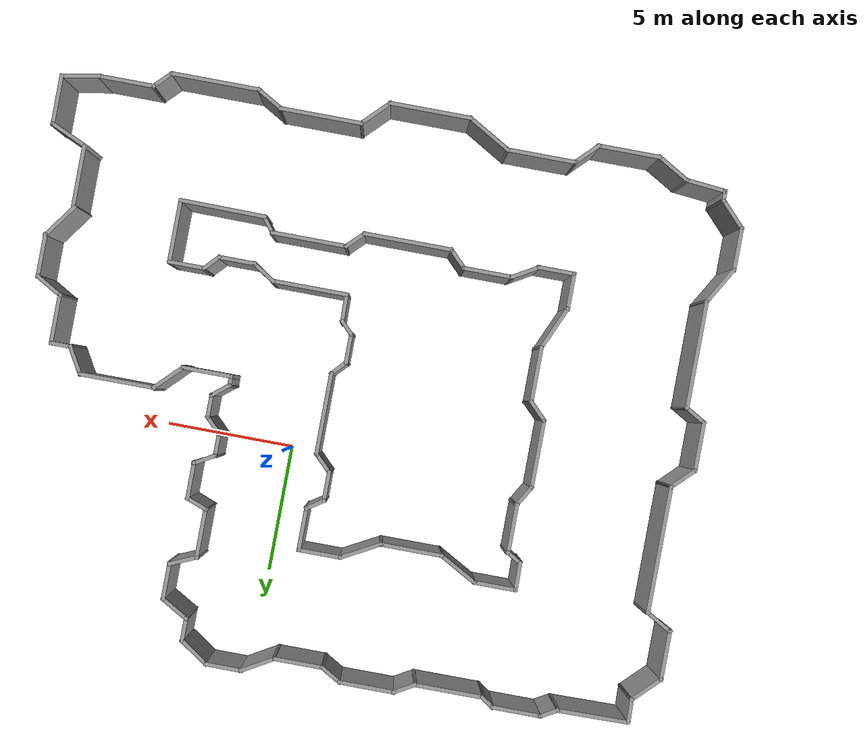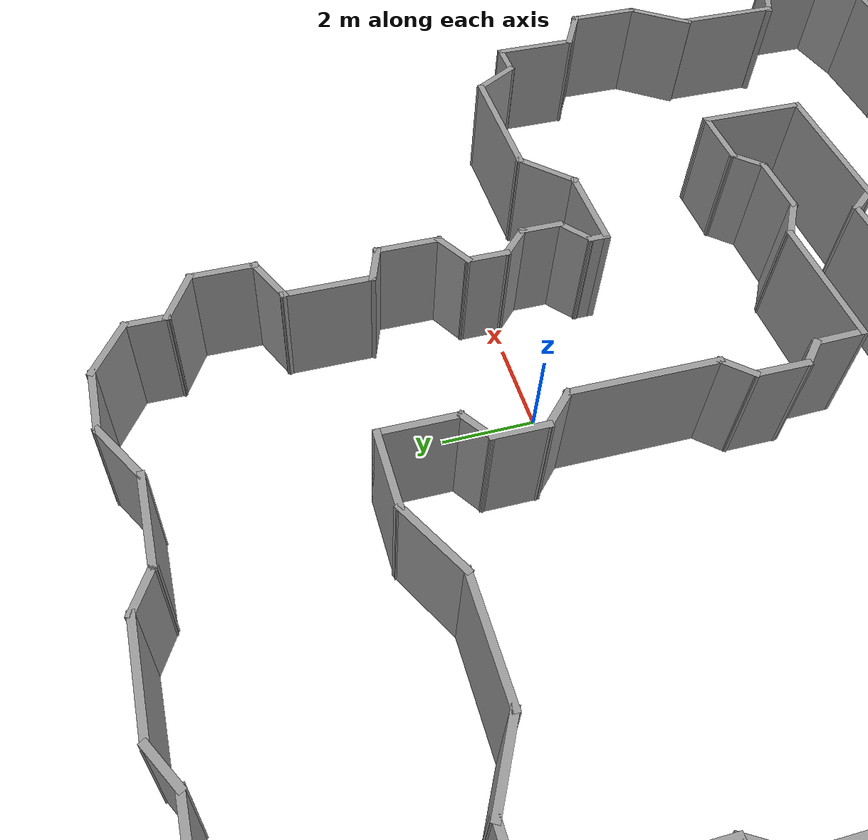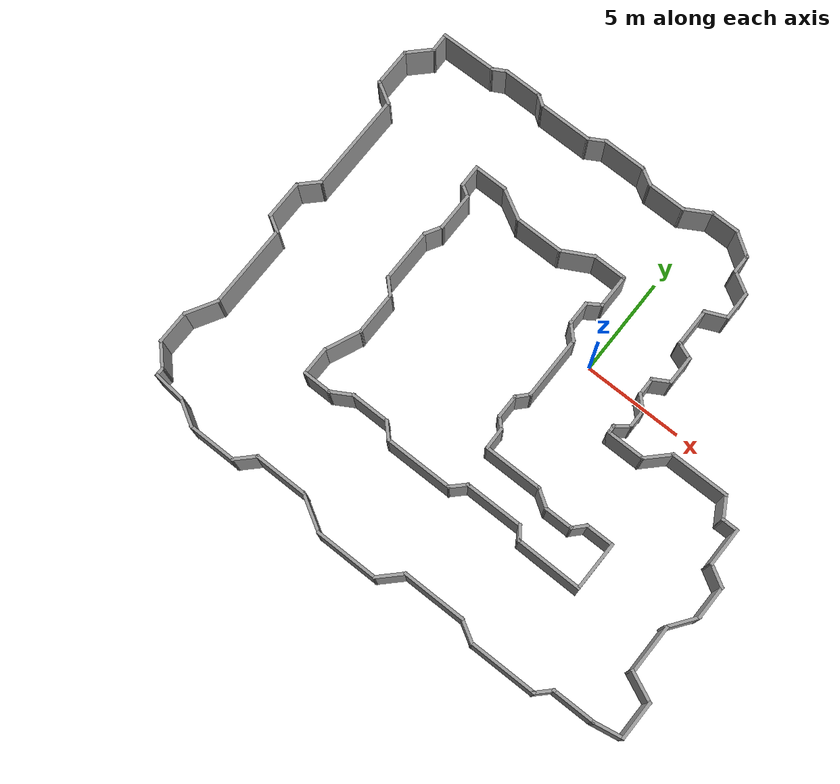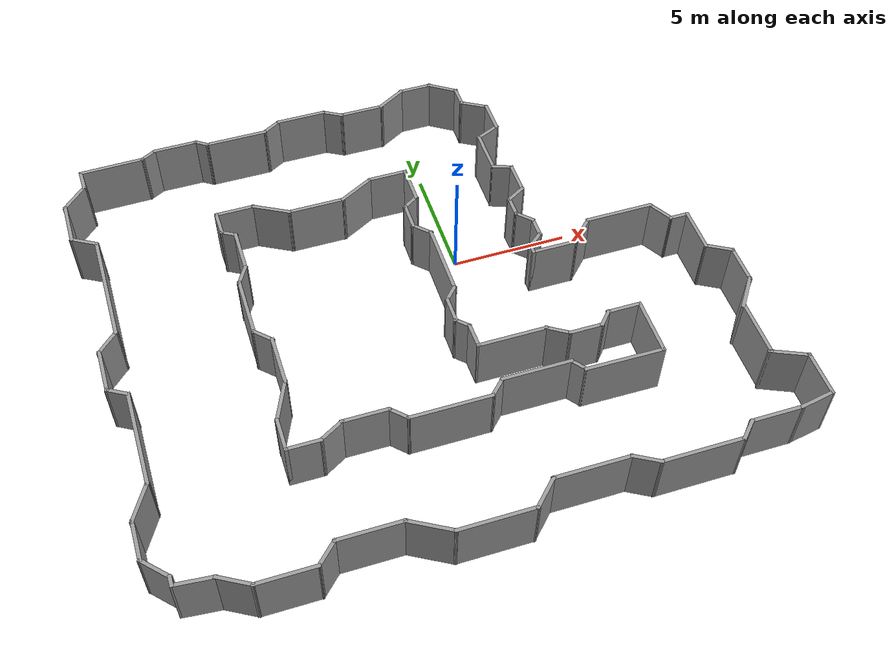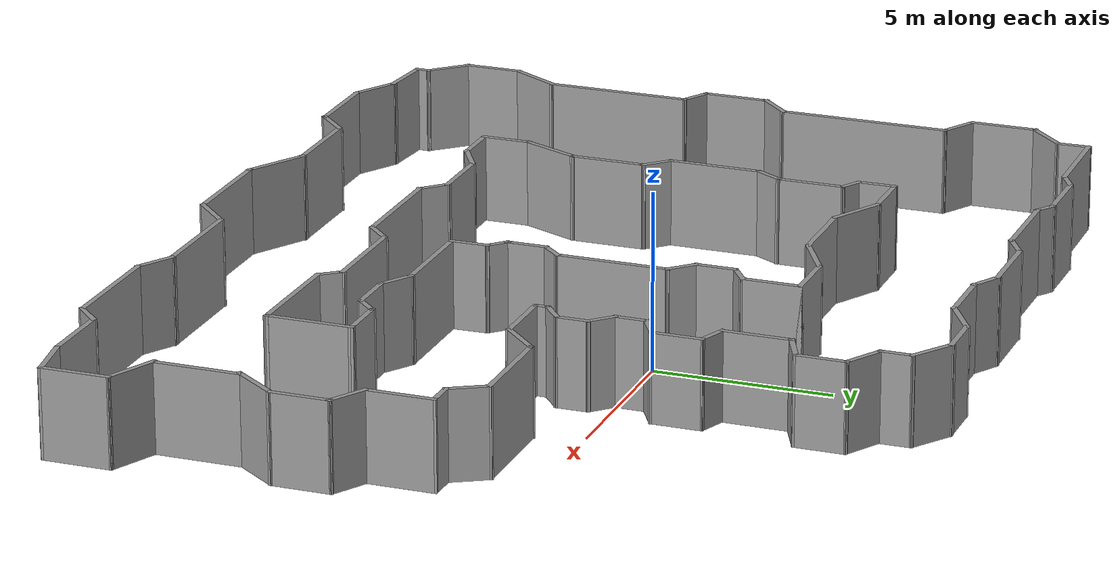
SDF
<sdf version="1.6">
 <model name="custom_hallway">
  <pose>-2.26322 -2.49916 0 0 -0 0</pose>
  <link name="Wall_100">
   <collision name="Wall_100_Collision">
    <geometry><box><size>1 0.15 2.5</size></box></geometry>
    <pose>0 0 1.25 0 -0 0</pose>
   </collision>
   <visual name="Wall_100_Visual">
    <pose>0 0 1.25 0 -0 0</pose>
    <geometry><box><size>1 0.15 2.5</size></box></geometry>
    <material>
     <script><uri>file://media/materials/scripts/gazebo.material</uri><name>Gazebo/Grey</name></script>
     <ambient>1 1 1 1</ambient>
    </material>
   </visual>
   <pose>-6.80933 -0.6273 0 0 0 -0.785398</pose>
  </link>
  <link name="Wall_101">
   <collision name="Wall_101_Collision">
    <geometry><box><size>2.25 0.15 2.5</size></box></geometry>
    <pose>0 0 1.25 0 -0 0</pose>
   </collision>
   <visual name="Wall_101_Visual">
    <pose>0 0 1.25 0 -0 0</pose>
    <geometry><box><size>2.25 0.15 2.5</size></box></geometry>
    <material>
     <script><uri>file://media/materials/scripts/gazebo.material</uri><name>Gazebo/Grey</name></script>
     <ambient>1 1 1 1</ambient>
    </material>
   </visual>
   <pose>-6.50882 -1.97782 0 0 0 -1.5708</pose>
  </link>
  <link name="Wall_102">
   <collision name="Wall_102_Collision">
    <geometry><box><size>1.92514 0.15 2.5</size></box></geometry>
    <pose>0 0 1.25 0 -0 0</pose>
   </collision>
   <visual name="Wall_102_Visual">
    <pose>0 0 1.25 0 -0 0</pose>
    <geometry><box><size>1.92514 0.15 2.5</size></box></geometry>
    <material>
     <script><uri>file://media/materials/scripts/gazebo.material</uri><name>Gazebo/Grey</name></script>
     <ambient>1 1 1 1</ambient>
    </material>
   </visual>
   <pose>-6.86481 -3.84087 0 0 0 -1.98351</pose>
  </link>
  <link name="Wall_103">
   <collision name="Wall_103_Collision">
    <geometry><box><size>1.5 0.15 2.5</size></box></geometry>
    <pose>0 0 1.25 0 -0 0</pose>
   </collision>
   <visual name="Wall_103_Visual">
    <pose>0 0 1.25 0 -0 0</pose>
    <geometry><box><size>1.5 0.15 2.5</size></box></geometry>
    <material>
     <script><uri>file://media/materials/scripts/gazebo.material</uri><name>Gazebo/Grey</name></script>
     <ambient>1 1 1 1</ambient>
    </material>
   </visual>
   <pose>-7.22081 -5.32891 0 0 0 -1.5708</pose>
  </link>
  <link name="Wall_105">
   <collision name="Wall_105_Collision">
    <geometry><box><size>1.02334 0.15 2.5</size></box></geometry>
    <pose>0 0 1.25 0 -0 0</pose>
   </collision>
   <visual name="Wall_105_Visual">
    <pose>0 0 1.25 0 -0 0</pose>
    <geometry><box><size>1.02334 0.15 2.5</size></box></geometry>
    <material>
     <script><uri>file://media/materials/scripts/gazebo.material</uri><name>Gazebo/Grey</name></script>
     <ambient>1 1 1 1</ambient>
    </material>
   </visual>
   <pose>-12.3267 9.91914 0 0 0 -1.54263</pose>
  </link>
  <link name="Wall_107">
   <collision name="Wall_107_Collision">
    <geometry><box><size>0.5 0.15 2.5</size></box></geometry>
    <pose>0 0 1.25 0 -0 0</pose>
   </collision>
   <visual name="Wall_107_Visual">
    <pose>0 0 1.25 0 -0 0</pose>
    <geometry><box><size>0.5 0.15 2.5</size></box></geometry>
    <material>
     <script><uri>file://media/materials/scripts/gazebo.material</uri><name>Gazebo/Grey</name></script>
     <ambient>1 1 1 1</ambient>
    </material>
   </visual>
   <pose>-12.2855 -9.9614 0 0 -0 1.5708</pose>
  </link>
  <link name="Wall_109">
   <collision name="Wall_109_Collision">
    <geometry><box><size>1.18687 0.15 2.5</size></box></geometry>
    <pose>0 0 1.25 0 -0 0</pose>
   </collision>
   <visual name="Wall_109_Visual">
    <pose>0 0 1.25 0 -0 0</pose>
    <geometry><box><size>1.18687 0.15 2.5</size></box></geometry>
    <material>
     <script><uri>file://media/materials/scripts/gazebo.material</uri><name>Gazebo/Grey</name></script>
     <ambient>1 1 1 1</ambient>
    </material>
   </visual>
   <pose>-7.21264 5.67772 0 0 0 -1.55503</pose>
  </link>
  <link name="Wall_111">
   <collision name="Wall_111_Collision">
    <geometry><box><size>1.5 0.15 2.5</size></box></geometry>
    <pose>0 0 1.25 0 -0 0</pose>
   </collision>
   <visual name="Wall_111_Visual">
    <pose>0 0 1.25 0 -0 0</pose>
    <geometry><box><size>1.5 0.15 2.5</size></box></geometry>
    <material>
     <script><uri>file://media/materials/scripts/gazebo.material</uri><name>Gazebo/Grey</name></script>
     <ambient>1 1 1 1</ambient>
    </material>
   </visual>
   <pose>-6.54581 -6.00391 0 0 -0 0</pose>
  </link>
  <link name="Wall_112">
   <collision name="Wall_112_Collision">
    <geometry><box><size>1.25 0.15 2.5</size></box></geometry>
    <pose>0 0 1.25 0 -0 0</pose>
   </collision>
   <visual name="Wall_112_Visual">
    <pose>0 0 1.25 0 -0 0</pose>
    <geometry><box><size>1.25 0.15 2.5</size></box></geometry>
    <material>
     <script><uri>file://media/materials/scripts/gazebo.material</uri><name>Gazebo/Grey</name></script>
     <ambient>1 1 1 1</ambient>
    </material>
   </visual>
   <pose>-5.3945 -5.72891 0 0 -0 0.523599</pose>
  </link>
  <link name="Wall_113">
   <collision name="Wall_113_Collision">
    <geometry><box><size>2 0.15 2.5</size></box></geometry>
    <pose>0 0 1.25 0 -0 0</pose>
   </collision>
   <visual name="Wall_113_Visual">
    <pose>0 0 1.25 0 -0 0</pose>
    <geometry><box><size>2 0.15 2.5</size></box></geometry>
    <material>
     <script><uri>file://media/materials/scripts/gazebo.material</uri><name>Gazebo/Grey</name></script>
     <ambient>1 1 1 1</ambient>
    </material>
   </visual>
   <pose>-3.99318 -5.45391 0 0 -0 0</pose>
  </link>
  <link name="Wall_114">
   <collision name="Wall_114_Collision">
    <geometry><box><size>1 0.15 2.5</size></box></geometry>
    <pose>0 0 1.25 0 -0 0</pose>
   </collision>
   <visual name="Wall_114_Visual">
    <pose>0 0 1.25 0 -0 0</pose>
    <geometry><box><size>1 0.15 2.5</size></box></geometry>
    <material>
     <script><uri>file://media/materials/scripts/gazebo.material</uri><name>Gazebo/Grey</name></script>
     <ambient>1 1 1 1</ambient>
    </material>
   </visual>
   <pose>-2.76767 -5.75443 0 0 0 -0.785398</pose>
  </link>
  <link name="Wall_115">
   <collision name="Wall_115_Collision">
    <geometry><box><size>3.5 0.15 2.5</size></box></geometry>
    <pose>0 0 1.25 0 -0 0</pose>
   </collision>
   <visual name="Wall_115_Visual">
    <pose>0 0 1.25 0 -0 0</pose>
    <geometry><box><size>3.5 0.15 2.5</size></box></geometry>
    <material>
     <script><uri>file://media/materials/scripts/gazebo.material</uri><name>Gazebo/Grey</name></script>
     <ambient>1 1 1 1</ambient>
    </material>
   </visual>
   <pose>-0.792145 -6.05495 0 0 -0 0</pose>
  </link>
  <link name="Wall_116">
   <collision name="Wall_116_Collision">
    <geometry><box><size>1 0.15 2.5</size></box></geometry>
    <pose>0 0 1.25 0 -0 0</pose>
   </collision>
   <visual name="Wall_116_Visual">
    <pose>0 0 1.25 0 -0 0</pose>
    <geometry><box><size>1 0.15 2.5</size></box></geometry>
    <material>
     <script><uri>file://media/materials/scripts/gazebo.material</uri><name>Gazebo/Grey</name></script>
     <ambient>1 1 1 1</ambient>
    </material>
   </visual>
   <pose>1.18338 -5.75443 0 0 -0 0.785398</pose>
  </link>
  <link name="Wall_117">
   <collision name="Wall_117_Collision">
    <geometry><box><size>3 0.15 2.5</size></box></geometry>
    <pose>0 0 1.25 0 -0 0</pose>
   </collision>
   <visual name="Wall_117_Visual">
    <pose>0 0 1.25 0 -0 0</pose>
    <geometry><box><size>3 0.15 2.5</size></box></geometry>
    <material>
     <script><uri>file://media/materials/scripts/gazebo.material</uri><name>Gazebo/Grey</name></script>
     <ambient>1 1 1 1</ambient>
    </material>
   </visual>
   <pose>2.9089 -5.45391 0 0 -0 0</pose>
  </link>
  <link name="Wall_118">
   <collision name="Wall_118_Collision">
    <geometry><box><size>0.80121 0.15 2.5</size></box></geometry>
    <pose>0 0 1.25 0 -0 0</pose>
   </collision>
   <visual name="Wall_118_Visual">
    <pose>0 0 1.25 0 -0 0</pose>
    <geometry><box><size>0.80121 0.15 2.5</size></box></geometry>
    <material>
     <script><uri>file://media/materials/scripts/gazebo.material</uri><name>Gazebo/Grey</name></script>
     <ambient>1 1 1 1</ambient>
    </material>
   </visual>
   <pose>4.53016 -5.71372 0 0 0 -0.923842</pose>
  </link>
  <link name="Wall_119">
   <collision name="Wall_119_Collision">
    <geometry><box><size>3.39543 0.15 2.5</size></box></geometry>
    <pose>0 0 1.25 0 -0 0</pose>
   </collision>
   <visual name="Wall_119_Visual">
    <pose>0 0 1.25 0 -0 0</pose>
    <geometry><box><size>3.39543 0.15 2.5</size></box></geometry>
    <material>
     <script><uri>file://media/materials/scripts/gazebo.material</uri><name>Gazebo/Grey</name></script>
     <ambient>1 1 1 1</ambient>
    </material>
   </visual>
   <pose>6.34906 -6.01185 0 0 0 -0.009362</pose>
  </link>
  <link name="Wall_121">
   <collision name="Wall_121_Collision">
    <geometry><box><size>2 0.15 2.5</size></box></geometry>
    <pose>0 0 1.25 0 -0 0</pose>
   </collision>
   <visual name="Wall_121_Visual">
    <pose>0 0 1.25 0 -0 0</pose>
    <geometry><box><size>2 0.15 2.5</size></box></geometry>
    <material>
     <script><uri>file://media/materials/scripts/gazebo.material</uri><name>Gazebo/Grey</name></script>
     <ambient>1 1 1 1</ambient>
    </material>
   </visual>
   <pose>5.80419 0.196087 0 0 -0 0</pose>
  </link>
  <link name="Wall_122">
   <collision name="Wall_122_Collision">
    <geometry><box><size>1.5 0.15 2.5</size></box></geometry>
    <pose>0 0 1.25 0 -0 0</pose>
   </collision>
   <visual name="Wall_122_Visual">
    <pose>0 0 1.25 0 -0 0</pose>
    <geometry><box><size>1.5 0.15 2.5</size></box></geometry>
    <material>
     <script><uri>file://media/materials/scripts/gazebo.material</uri><name>Gazebo/Grey</name></script>
     <ambient>1 1 1 1</ambient>
    </material>
   </visual>
   <pose>7.20648 0.673385 0 0 -0 0.785398</pose>
  </link>
  <link name="Wall_123">
   <collision name="Wall_123_Collision">
    <geometry><box><size>3 0.15 2.5</size></box></geometry>
    <pose>0 0 1.25 0 -0 0</pose>
   </collision>
   <visual name="Wall_123_Visual">
    <pose>0 0 1.25 0 -0 0</pose>
    <geometry><box><size>3 0.15 2.5</size></box></geometry>
    <material>
     <script><uri>file://media/materials/scripts/gazebo.material</uri><name>Gazebo/Grey</name></script>
     <ambient>1 1 1 1</ambient>
    </material>
   </visual>
   <pose>9.10878 1.15068 0 0 -0 0</pose>
  </link>
  <link name="Wall_124">
   <collision name="Wall_124_Collision">
    <geometry><box><size>1.25 0.15 2.5</size></box></geometry>
    <pose>0 0 1.25 0 -0 0</pose>
   </collision>
   <visual name="Wall_124_Visual">
    <pose>0 0 1.25 0 -0 0</pose>
    <geometry><box><size>1.25 0.15 2.5</size></box></geometry>
    <material>
     <script><uri>file://media/materials/scripts/gazebo.material</uri><name>Gazebo/Grey</name></script>
     <ambient>1 1 1 1</ambient>
    </material>
   </visual>
   <pose>10.8088 0.674368 0 0 0 -1.0472</pose>
  </link>
  <link name="Wall_125">
   <collision name="Wall_125_Collision">
    <geometry><box><size>0.895408 0.15 2.5</size></box></geometry>
    <pose>0 0 1.25 0 -0 0</pose>
   </collision>
   <visual name="Wall_125_Visual">
    <pose>0 0 1.25 0 -0 0</pose>
    <geometry><box><size>0.895408 0.15 2.5</size></box></geometry>
    <material>
     <script><uri>file://media/materials/scripts/gazebo.material</uri><name>Gazebo/Grey</name></script>
     <ambient>1 1 1 1</ambient>
    </material>
   </visual>
   <pose>11.4565 0.197071 0 0 0 -0.002638</pose>
  </link>
  <link name="Wall_126">
   <collision name="Wall_126_Collision">
    <geometry><box><size>2 0.15 2.5</size></box></geometry>
    <pose>0 0 1.25 0 -0 0</pose>
   </collision>
   <visual name="Wall_126_Visual">
    <pose>0 0 1.25 0 -0 0</pose>
    <geometry><box><size>2 0.15 2.5</size></box></geometry>
    <material>
     <script><uri>file://media/materials/scripts/gazebo.material</uri><name>Gazebo/Grey</name></script>
     <ambient>1 1 1 1</ambient>
    </material>
   </visual>
   <pose>11.8292 -0.728913 0 0 0 -1.5708</pose>
  </link>
  <link name="Wall_127">
   <collision name="Wall_127_Collision">
    <geometry><box><size>1.25 0.15 2.5</size></box></geometry>
    <pose>0 0 1.25 0 -0 0</pose>
   </collision>
   <visual name="Wall_127_Visual">
    <pose>0 0 1.25 0 -0 0</pose>
    <geometry><box><size>1.25 0.15 2.5</size></box></geometry>
    <material>
     <script><uri>file://media/materials/scripts/gazebo.material</uri><name>Gazebo/Grey</name></script>
     <ambient>1 1 1 1</ambient>
    </material>
   </visual>
   <pose>12.3055 -1.92891 0 0 0 -0.523599</pose>
  </link>
  <link name="Wall_128">
   <collision name="Wall_128_Collision">
    <geometry><box><size>1.75 0.15 2.5</size></box></geometry>
    <pose>0 0 1.25 0 -0 0</pose>
   </collision>
   <visual name="Wall_128_Visual">
    <pose>0 0 1.25 0 -0 0</pose>
    <geometry><box><size>1.75 0.15 2.5</size></box></geometry>
    <material>
     <script><uri>file://media/materials/scripts/gazebo.material</uri><name>Gazebo/Grey</name></script>
     <ambient>1 1 1 1</ambient>
    </material>
   </visual>
   <pose>12.7818 -3.00391 0 0 0 -1.5708</pose>
  </link>
  <link name="Wall_129">
   <collision name="Wall_129_Collision">
    <geometry><box><size>1.66168 0.15 2.5</size></box></geometry>
    <pose>0 0 1.25 0 -0 0</pose>
   </collision>
   <visual name="Wall_129_Visual">
    <pose>0 0 1.25 0 -0 0</pose>
    <geometry><box><size>1.66168 0.15 2.5</size></box></geometry>
    <material>
     <script><uri>file://media/materials/scripts/gazebo.material</uri><name>Gazebo/Grey</name></script>
     <ambient>1 1 1 1</ambient>
    </material>
   </visual>
   <pose>12.3373 -4.41523 0 0 0 -2.1995</pose>
  </link>
  <link name="Wall_130">
   <collision name="Wall_130_Collision">
    <geometry><box><size>2.5 0.15 2.5</size></box></geometry>
    <pose>0 0 1.25 0 -0 0</pose>
   </collision>
   <visual name="Wall_130_Visual">
    <pose>0 0 1.25 0 -0 0</pose>
    <geometry><box><size>2.5 0.15 2.5</size></box></geometry>
    <material>
     <script><uri>file://media/materials/scripts/gazebo.material</uri><name>Gazebo/Grey</name></script>
     <ambient>1 1 1 1</ambient>
    </material>
   </visual>
   <pose>11.9463 -6.20155 0 0 0 -1.5708</pose>
  </link>
  <link name="Wall_131">
   <collision name="Wall_131_Collision">
    <geometry><box><size>1.66636 0.15 2.5</size></box></geometry>
    <pose>0 0 1.25 0 -0 0</pose>
   </collision>
   <visual name="Wall_131_Visual">
    <pose>0 0 1.25 0 -0 0</pose>
    <geometry><box><size>1.66636 0.15 2.5</size></box></geometry>
    <material>
     <script><uri>file://media/materials/scripts/gazebo.material</uri><name>Gazebo/Grey</name></script>
     <ambient>1 1 1 1</ambient>
    </material>
   </visual>
   <pose>12.5844 -7.6873 0 0 0 -0.422302</pose>
  </link>
  <link name="Wall_132">
   <collision name="Wall_132_Collision">
    <geometry><box><size>2 0.15 2.5</size></box></geometry>
    <pose>0 0 1.25 0 -0 0</pose>
   </collision>
   <visual name="Wall_132_Visual">
    <pose>0 0 1.25 0 -0 0</pose>
    <geometry><box><size>2 0.15 2.5</size></box></geometry>
    <material>
     <script><uri>file://media/materials/scripts/gazebo.material</uri><name>Gazebo/Grey</name></script>
     <ambient>1 1 1 1</ambient>
    </material>
   </visual>
   <pose>13.2759 -8.92305 0 0 0 -1.5708</pose>
  </link>
  <link name="Wall_133">
   <collision name="Wall_133_Collision">
    <geometry><box><size>1.56859 0.15 2.5</size></box></geometry>
    <pose>0 0 1.25 0 -0 0</pose>
   </collision>
   <visual name="Wall_133_Visual">
    <pose>0 0 1.25 0 -0 0</pose>
    <geometry><box><size>1.56859 0.15 2.5</size></box></geometry>
    <material>
     <script><uri>file://media/materials/scripts/gazebo.material</uri><name>Gazebo/Grey</name></script>
     <ambient>1 1 1 1</ambient>
    </material>
   </visual>
   <pose>12.5776 -9.97199 0 0 0 -2.96594</pose>
  </link>
  <link name="Wall_134">
   <collision name="Wall_134_Collision">
    <geometry><box><size>2.25 0.15 2.5</size></box></geometry>
    <pose>0 0 1.25 0 -0 0</pose>
   </collision>
   <visual name="Wall_134_Visual">
    <pose>0 0 1.25 0 -0 0</pose>
    <geometry><box><size>2.25 0.15 2.5</size></box></geometry>
    <material>
     <script><uri>file://media/materials/scripts/gazebo.material</uri><name>Gazebo/Grey</name></script>
     <ambient>1 1 1 1</ambient>
    </material>
   </visual>
   <pose>10.8292 -10.0959 0 0 -0 3.14159</pose>
  </link>
  <link name="Wall_135">
   <collision name="Wall_135_Collision">
    <geometry><box><size>1 0.15 2.5</size></box></geometry>
    <pose>0 0 1.25 0 -0 0</pose>
   </collision>
   <visual name="Wall_135_Visual">
    <pose>0 0 1.25 0 -0 0</pose>
    <geometry><box><size>1 0.15 2.5</size></box></geometry>
    <material>
     <script><uri>file://media/materials/scripts/gazebo.material</uri><name>Gazebo/Grey</name></script>
     <ambient>1 1 1 1</ambient>
    </material>
   </visual>
   <pose>9.47867 -10.3965 0 0 0 -2.35619</pose>
  </link>
  <link name="Wall_136">
   <collision name="Wall_136_Collision">
    <geometry><box><size>3.5 0.15 2.5</size></box></geometry>
    <pose>0 0 1.25 0 -0 0</pose>
   </collision>
   <visual name="Wall_136_Visual">
    <pose>0 0 1.25 0 -0 0</pose>
    <geometry><box><size>3.5 0.15 2.5</size></box></geometry>
    <material>
     <script><uri>file://media/materials/scripts/gazebo.material</uri><name>Gazebo/Grey</name></script>
     <ambient>1 1 1 1</ambient>
    </material>
   </visual>
   <pose>7.50315 -10.697 0 0 -0 3.14159</pose>
  </link>
  <link name="Wall_137">
   <collision name="Wall_137_Collision">
    <geometry><box><size>1.25 0.15 2.5</size></box></geometry>
    <pose>0 0 1.25 0 -0 0</pose>
   </collision>
   <visual name="Wall_137_Visual">
    <pose>0 0 1.25 0 -0 0</pose>
    <geometry><box><size>1.25 0.15 2.5</size></box></geometry>
    <material>
     <script><uri>file://media/materials/scripts/gazebo.material</uri><name>Gazebo/Grey</name></script>
     <ambient>1 1 1 1</ambient>
    </material>
   </visual>
   <pose>5.35183 -10.422 0 0 -0 2.61799</pose>
  </link>
  <link name="Wall_138">
   <collision name="Wall_138_Collision">
    <geometry><box><size>3.25 0.15 2.5</size></box></geometry>
    <pose>0 0 1.25 0 -0 0</pose>
   </collision>
   <visual name="Wall_138_Visual">
    <pose>0 0 1.25 0 -0 0</pose>
    <geometry><box><size>3.25 0.15 2.5</size></box></geometry>
    <material>
     <script><uri>file://media/materials/scripts/gazebo.material</uri><name>Gazebo/Grey</name></script>
     <ambient>1 1 1 1</ambient>
    </material>
   </visual>
   <pose>3.32552 -10.147 0 0 -0 3.14159</pose>
  </link>
  <link name="Wall_139">
   <collision name="Wall_139_Collision">
    <geometry><box><size>1.5 0.15 2.5</size></box></geometry>
    <pose>0 0 1.25 0 -0 0</pose>
   </collision>
   <visual name="Wall_139_Visual">
    <pose>0 0 1.25 0 -0 0</pose>
    <geometry><box><size>1.5 0.15 2.5</size></box></geometry>
    <material>
     <script><uri>file://media/materials/scripts/gazebo.material</uri><name>Gazebo/Grey</name></script>
     <ambient>1 1 1 1</ambient>
    </material>
   </visual>
   <pose>1.29822 -10.6243 0 0 0 -2.35619</pose>
  </link>
  <link name="Wall_140">
   <collision name="Wall_140_Collision">
    <geometry><box><size>3.25 0.15 2.5</size></box></geometry>
    <pose>0 0 1.25 0 -0 0</pose>
   </collision>
   <visual name="Wall_140_Visual">
    <pose>0 0 1.25 0 -0 0</pose>
    <geometry><box><size>3.25 0.15 2.5</size></box></geometry>
    <material>
     <script><uri>file://media/materials/scripts/gazebo.material</uri><name>Gazebo/Grey</name></script>
     <ambient>1 1 1 1</ambient>
    </material>
   </visual>
   <pose>-0.729076 -11.1016 0 0 -0 3.14159</pose>
  </link>
  <link name="Wall_141">
   <collision name="Wall_141_Collision">
    <geometry><box><size>2 0.15 2.5</size></box></geometry>
    <pose>0 0 1.25 0 -0 0</pose>
   </collision>
   <visual name="Wall_141_Visual">
    <pose>0 0 1.25 0 -0 0</pose>
    <geometry><box><size>2 0.15 2.5</size></box></geometry>
    <material>
     <script><uri>file://media/materials/scripts/gazebo.material</uri><name>Gazebo/Grey</name></script>
     <ambient>1 1 1 1</ambient>
    </material>
   </visual>
   <pose>-3.08015 -10.6391 0 0 -0 2.61799</pose>
  </link>
  <link name="Wall_142">
   <collision name="Wall_142_Collision">
    <geometry><box><size>2.75 0.15 2.5</size></box></geometry>
    <pose>0 0 1.25 0 -0 0</pose>
   </collision>
   <visual name="Wall_142_Visual">
    <pose>0 0 1.25 0 -0 0</pose>
    <geometry><box><size>2.75 0.15 2.5</size></box></geometry>
    <material>
     <script><uri>file://media/materials/scripts/gazebo.material</uri><name>Gazebo/Grey</name></script>
     <ambient>1 1 1 1</ambient>
    </material>
   </visual>
   <pose>-5.18122 -10.1766 0 0 -0 3.14159</pose>
  </link>
  <link name="Wall_143">
   <collision name="Wall_143_Collision">
    <geometry><box><size>1.25 0.15 2.5</size></box></geometry>
    <pose>0 0 1.25 0 -0 0</pose>
   </collision>
   <visual name="Wall_143_Visual">
    <pose>0 0 1.25 0 -0 0</pose>
    <geometry><box><size>1.25 0.15 2.5</size></box></geometry>
    <material>
     <script><uri>file://media/materials/scripts/gazebo.material</uri><name>Gazebo/Grey</name></script>
     <ambient>1 1 1 1</ambient>
    </material>
   </visual>
   <pose>-6.87013 -10.5655 0 0 0 -2.35619</pose>
  </link>
  <link name="Wall_144">
   <collision name="Wall_144_Collision">
    <geometry><box><size>2.5 0.15 2.5</size></box></geometry>
    <pose>0 0 1.25 0 -0 0</pose>
   </collision>
   <visual name="Wall_144_Visual">
    <pose>0 0 1.25 0 -0 0</pose>
    <geometry><box><size>2.5 0.15 2.5</size></box></geometry>
    <material>
     <script><uri>file://media/materials/scripts/gazebo.material</uri><name>Gazebo/Grey</name></script>
     <ambient>1 1 1 1</ambient>
    </material>
   </visual>
   <pose>-8.43404 -10.9544 0 0 -0 3.14159</pose>
  </link>
  <link name="Wall_145">
   <collision name="Wall_145_Collision">
    <geometry><box><size>1.5 0.15 2.5</size></box></geometry>
    <pose>0 0 1.25 0 -0 0</pose>
   </collision>
   <visual name="Wall_145_Visual">
    <pose>0 0 1.25 0 -0 0</pose>
    <geometry><box><size>1.5 0.15 2.5</size></box></geometry>
    <material>
     <script><uri>file://media/materials/scripts/gazebo.material</uri><name>Gazebo/Grey</name></script>
     <ambient>1 1 1 1</ambient>
    </material>
   </visual>
   <pose>-10.1936 -10.6169 0 0 -0 2.61799</pose>
  </link>
  <link name="Wall_147">
   <collision name="Wall_147_Collision">
    <geometry><box><size>1.66413 0.15 2.5</size></box></geometry>
    <pose>0 0 1.25 0 -0 0</pose>
   </collision>
   <visual name="Wall_147_Visual">
    <pose>0 0 1.25 0 -0 0</pose>
    <geometry><box><size>1.66413 0.15 2.5</size></box></geometry>
    <material>
     <script><uri>file://media/materials/scripts/gazebo.material</uri><name>Gazebo/Grey</name></script>
     <ambient>1 1 1 1</ambient>
    </material>
   </visual>
   <pose>-11.5319 -10.2079 0 0 -0 3.04701</pose>
  </link>
  <link name="Wall_21">
   <collision name="Wall_21_Collision">
    <geometry><box><size>0.859757 0.15 2.5</size></box></geometry>
    <pose>0 0 1.25 0 -0 0</pose>
   </collision>
   <visual name="Wall_21_Visual">
    <pose>0 0 1.25 0 -0 0</pose>
    <geometry><box><size>0.859757 0.15 2.5</size></box></geometry>
    <material>
     <script><uri>file://media/materials/scripts/gazebo.material</uri><name>Gazebo/Grey</name></script>
     <ambient>1 1 1 1</ambient>
    </material>
   </visual>
   <pose>6.38603 -3.9124 0 0 0 -2.32565</pose>
  </link>
  <link name="Wall_22">
   <collision name="Wall_22_Collision">
    <geometry><box><size>1.5 0.15 2.5</size></box></geometry>
    <pose>0 0 1.25 0 -0 0</pose>
   </collision>
   <visual name="Wall_22_Visual">
    <pose>0 0 1.25 0 -0 0</pose>
    <geometry><box><size>1.5 0.15 2.5</size></box></geometry>
    <material>
     <script><uri>file://media/materials/scripts/gazebo.material</uri><name>Gazebo/Grey</name></script>
     <ambient>1 1 1 1</ambient>
    </material>
   </visual>
   <pose>5.46788 -4.17088 0 0 -0 3.14159</pose>
  </link>
  <link name="Wall_23">
   <collision name="Wall_23_Collision">
    <geometry><box><size>1.11403 0.15 2.5</size></box></geometry>
    <pose>0 0 1.25 0 -0 0</pose>
   </collision>
   <visual name="Wall_23_Visual">
    <pose>0 0 1.25 0 -0 0</pose>
    <geometry><box><size>1.11403 0.15 2.5</size></box></geometry>
    <material>
     <script><uri>file://media/materials/scripts/gazebo.material</uri><name>Gazebo/Grey</name></script>
     <ambient>1 1 1 1</ambient>
    </material>
   </visual>
   <pose>4.38603 -3.9124 0 0 -0 2.57559</pose>
  </link>
  <link name="Wall_25">
   <collision name="Wall_25_Collision">
    <geometry><box><size>3 0.15 2.5</size></box></geometry>
    <pose>0 0 1.25 0 -0 0</pose>
   </collision>
   <visual name="Wall_25_Visual">
    <pose>0 0 1.25 0 -0 0</pose>
    <geometry><box><size>3 0.15 2.5</size></box></geometry>
    <material>
     <script><uri>file://media/materials/scripts/gazebo.material</uri><name>Gazebo/Grey</name></script>
     <ambient>1 1 1 1</ambient>
    </material>
   </visual>
   <pose>2.55419 -3.65391 0 0 -0 0</pose>
  </link>
  <link name="Wall_27">
   <collision name="Wall_27_Collision">
    <geometry><box><size>1.5 0.15 2.5</size></box></geometry>
    <pose>0 0 1.25 0 -0 0</pose>
   </collision>
   <visual name="Wall_27_Visual">
    <pose>0 0 1.25 0 -0 0</pose>
    <geometry><box><size>1.5 0.15 2.5</size></box></geometry>
    <material>
     <script><uri>file://media/materials/scripts/gazebo.material</uri><name>Gazebo/Grey</name></script>
     <ambient>1 1 1 1</ambient>
    </material>
   </visual>
   <pose>7.30419 -3.65391 0 0 -0 0</pose>
  </link>
  <link name="Wall_29">
   <collision name="Wall_29_Collision">
    <geometry><box><size>0.75 0.15 2.5</size></box></geometry>
    <pose>0 0 1.25 0 -0 0</pose>
   </collision>
   <visual name="Wall_29_Visual">
    <pose>0 0 1.25 0 -0 0</pose>
    <geometry><box><size>0.75 0.15 2.5</size></box></geometry>
    <material>
     <script><uri>file://media/materials/scripts/gazebo.material</uri><name>Gazebo/Grey</name></script>
     <ambient>1 1 1 1</ambient>
    </material>
   </visual>
   <pose>0.895053 -2.42058 0 0 -0 2.35619</pose>
  </link>
  <link name="Wall_30">
   <collision name="Wall_30_Collision">
    <geometry><box><size>1.23479 0.15 2.5</size></box></geometry>
    <pose>0 0 1.25 0 -0 0</pose>
   </collision>
   <visual name="Wall_30_Visual">
    <pose>0 0 1.25 0 -0 0</pose>
    <geometry><box><size>1.23479 0.15 2.5</size></box></geometry>
    <material>
     <script><uri>file://media/materials/scripts/gazebo.material</uri><name>Gazebo/Grey</name></script>
     <ambient>1 1 1 1</ambient>
    </material>
   </visual>
   <pose>0.682921 -1.66606 0 0 -0 1.5708</pose>
  </link>
  <link name="Wall_31">
   <collision name="Wall_31_Collision">
    <geometry><box><size>0.83969 0.15 2.5</size></box></geometry>
    <pose>0 0 1.25 0 -0 0</pose>
   </collision>
   <visual name="Wall_31_Visual">
    <pose>0 0 1.25 0 -0 0</pose>
    <geometry><box><size>0.83969 0.15 2.5</size></box></geometry>
    <material>
     <script><uri>file://media/materials/scripts/gazebo.material</uri><name>Gazebo/Grey</name></script>
     <ambient>1 1 1 1</ambient>
    </material>
   </visual>
   <pose>0.918189 -0.856327 0 0 -0 0.81997</pose>
  </link>
  <link name="Wall_33">
   <collision name="Wall_33_Collision">
    <geometry><box><size>1.17143 0.15 2.5</size></box></geometry>
    <pose>0 0 1.25 0 -0 0</pose>
   </collision>
   <visual name="Wall_33_Visual">
    <pose>0 0 1.25 0 -0 0</pose>
    <geometry><box><size>1.17143 0.15 2.5</size></box></geometry>
    <material>
     <script><uri>file://media/materials/scripts/gazebo.material</uri><name>Gazebo/Grey</name></script>
     <ambient>1 1 1 1</ambient>
    </material>
   </visual>
   <pose>1.11819 -3.14331 0 0 -0 1.59234</pose>
  </link>
  <link name="Wall_35">
   <collision name="Wall_35_Collision">
    <geometry><box><size>0.870502 0.15 2.5</size></box></geometry>
    <pose>0 0 1.25 0 -0 0</pose>
   </collision>
   <visual name="Wall_35_Visual">
    <pose>0 0 1.25 0 -0 0</pose>
    <geometry><box><size>0.870502 0.15 2.5</size></box></geometry>
    <material>
     <script><uri>file://media/materials/scripts/gazebo.material</uri><name>Gazebo/Grey</name></script>
     <ambient>1 1 1 1</ambient>
    </material>
   </visual>
   <pose>0.852302 4.39646 0 0 0 -2.55428</pose>
  </link>
  <link name="Wall_36">
   <collision name="Wall_36_Collision">
    <geometry><box><size>1.25 0.15 2.5</size></box></geometry>
    <pose>0 0 1.25 0 -0 0</pose>
   </collision>
   <visual name="Wall_36_Visual">
    <pose>0 0 1.25 0 -0 0</pose>
    <geometry><box><size>1.25 0.15 2.5</size></box></geometry>
    <material>
     <script><uri>file://media/materials/scripts/gazebo.material</uri><name>Gazebo/Grey</name></script>
     <ambient>1 1 1 1</ambient>
    </material>
   </visual>
   <pose>0.552417 3.64684 0 0 0 -1.5708</pose>
  </link>
  <link name="Wall_37">
   <collision name="Wall_37_Collision">
    <geometry><box><size>1 0.15 2.5</size></box></geometry>
    <pose>0 0 1.25 0 -0 0</pose>
   </collision>
   <visual name="Wall_37_Visual">
    <pose>0 0 1.25 0 -0 0</pose>
    <geometry><box><size>1 0.15 2.5</size></box></geometry>
    <material>
     <script><uri>file://media/materials/scripts/gazebo.material</uri><name>Gazebo/Grey</name></script>
     <ambient>1 1 1 1</ambient>
    </material>
   </visual>
   <pose>0.852937 2.79632 0 0 0 -0.785398</pose>
  </link>
  <link name="Wall_39">
   <collision name="Wall_39_Collision">
    <geometry><box><size>1.75 0.15 2.5</size></box></geometry>
    <pose>0 0 1.25 0 -0 0</pose>
   </collision>
   <visual name="Wall_39_Visual">
    <pose>0 0 1.25 0 -0 0</pose>
    <geometry><box><size>1.75 0.15 2.5</size></box></geometry>
    <material>
     <script><uri>file://media/materials/scripts/gazebo.material</uri><name>Gazebo/Grey</name></script>
     <ambient>1 1 1 1</ambient>
    </material>
   </visual>
   <pose>1.15219 5.39609 0 0 -0 1.5708</pose>
  </link>
  <link name="Wall_41">
   <collision name="Wall_41_Collision">
    <geometry><box><size>3.25 0.15 2.5</size></box></geometry>
    <pose>0 0 1.25 0 -0 0</pose>
   </collision>
   <visual name="Wall_41_Visual">
    <pose>0 0 1.25 0 -0 0</pose>
    <geometry><box><size>3.25 0.15 2.5</size></box></geometry>
    <material>
     <script><uri>file://media/materials/scripts/gazebo.material</uri><name>Gazebo/Grey</name></script>
     <ambient>1 1 1 1</ambient>
    </material>
   </visual>
   <pose>1.15346 0.945798 0 0 0 -1.5708</pose>
  </link>
  <link name="Wall_43">
   <collision name="Wall_43_Collision">
    <geometry><box><size>0.910309 0.15 2.5</size></box></geometry>
    <pose>0 0 1.25 0 -0 0</pose>
   </collision>
   <visual name="Wall_43_Visual">
    <pose>0 0 1.25 0 -0 0</pose>
    <geometry><box><size>0.910309 0.15 2.5</size></box></geometry>
    <material>
     <script><uri>file://media/materials/scripts/gazebo.material</uri><name>Gazebo/Grey</name></script>
     <ambient>1 1 1 1</ambient>
    </material>
   </visual>
   <pose>5.17462 0.785332 0 0 -0 0.680696</pose>
  </link>
  <link name="Wall_44">
   <collision name="Wall_44_Collision">
    <geometry><box><size>1 0.15 2.5</size></box></geometry>
    <pose>0 0 1.25 0 -0 0</pose>
   </collision>
   <visual name="Wall_44_Visual">
    <pose>0 0 1.25 0 -0 0</pose>
    <geometry><box><size>1 0.15 2.5</size></box></geometry>
    <material>
     <script><uri>file://media/materials/scripts/gazebo.material</uri><name>Gazebo/Grey</name></script>
     <ambient>1 1 1 1</ambient>
    </material>
   </visual>
   <pose>5.47005 1.44958 0 0 -0 1.5708</pose>
  </link>
  <link name="Wall_45">
   <collision name="Wall_45_Collision">
    <geometry><box><size>0.9181 0.15 2.5</size></box></geometry>
    <pose>0 0 1.25 0 -0 0</pose>
   </collision>
   <visual name="Wall_45_Visual">
    <pose>0 0 1.25 0 -0 0</pose>
    <geometry><box><size>0.9181 0.15 2.5</size></box></geometry>
    <material>
     <script><uri>file://media/materials/scripts/gazebo.material</uri><name>Gazebo/Grey</name></script>
     <ambient>1 1 1 1</ambient>
    </material>
   </visual>
   <pose>5.19745 2.1451 0 0 -0 2.36001</pose>
  </link>
  <link name="Wall_47">
   <collision name="Wall_47_Collision">
    <geometry><box><size>1 0.15 2.5</size></box></geometry>
    <pose>0 0 1.25 0 -0 0</pose>
   </collision>
   <visual name="Wall_47_Visual">
    <pose>0 0 1.25 0 -0 0</pose>
    <geometry><box><size>1 0.15 2.5</size></box></geometry>
    <material>
     <script><uri>file://media/materials/scripts/gazebo.material</uri><name>Gazebo/Grey</name></script>
     <ambient>1 1 1 1</ambient>
    </material>
   </visual>
   <pose>5.29291 3.47813 0 0 -0 0.523599</pose>
  </link>
  <link name="Wall_48">
   <collision name="Wall_48_Collision">
    <geometry><box><size>1.5 0.15 2.5</size></box></geometry>
    <pose>0 0 1.25 0 -0 0</pose>
   </collision>
   <visual name="Wall_48_Visual">
    <pose>0 0 1.25 0 -0 0</pose>
    <geometry><box><size>1.5 0.15 2.5</size></box></geometry>
    <material>
     <script><uri>file://media/materials/scripts/gazebo.material</uri><name>Gazebo/Grey</name></script>
     <ambient>1 1 1 1</ambient>
    </material>
   </visual>
   <pose>5.66097 4.36563 0 0 -0 1.5708</pose>
  </link>
  <link name="Wall_49">
   <collision name="Wall_49_Collision">
    <geometry><box><size>0.963959 0.15 2.5</size></box></geometry>
    <pose>0 0 1.25 0 -0 0</pose>
   </collision>
   <visual name="Wall_49_Visual">
    <pose>0 0 1.25 0 -0 0</pose>
    <geometry><box><size>0.963959 0.15 2.5</size></box></geometry>
    <material>
     <script><uri>file://media/materials/scripts/gazebo.material</uri><name>Gazebo/Grey</name></script>
     <ambient>1 1 1 1</ambient>
    </material>
   </visual>
   <pose>5.28042 5.18488 0 0 -0 2.77928</pose>
  </link>
  <link name="Wall_50">
   <collision name="Wall_50_Collision">
    <geometry><box><size>2 0.15 2.5</size></box></geometry>
    <pose>0 0 1.25 0 -0 0</pose>
   </collision>
   <visual name="Wall_50_Visual">
    <pose>0 0 1.25 0 -0 0</pose>
    <geometry><box><size>2 0.15 2.5</size></box></geometry>
    <material>
     <script><uri>file://media/materials/scripts/gazebo.material</uri><name>Gazebo/Grey</name></script>
     <ambient>1 1 1 1</ambient>
    </material>
   </visual>
   <pose>4.91136 6.26563 0 0 -0 1.5708</pose>
  </link>
  <link name="Wall_51">
   <collision name="Wall_51_Collision">
    <geometry><box><size>1.22064 0.15 2.5</size></box></geometry>
    <pose>0 0 1.25 0 -0 0</pose>
   </collision>
   <visual name="Wall_51_Visual">
    <pose>0 0 1.25 0 -0 0</pose>
    <geometry><box><size>1.22064 0.15 2.5</size></box></geometry>
    <material>
     <script><uri>file://media/materials/scripts/gazebo.material</uri><name>Gazebo/Grey</name></script>
     <ambient>1 1 1 1</ambient>
    </material>
   </visual>
   <pose>5.38867 7.39738 0 0 -0 0.419933</pose>
  </link>
  <link name="Wall_52">
   <collision name="Wall_52_Collision">
    <geometry><box><size>1.5 0.15 2.5</size></box></geometry>
    <pose>0 0 1.25 0 -0 0</pose>
   </collision>
   <visual name="Wall_52_Visual">
    <pose>0 0 1.25 0 -0 0</pose>
    <geometry><box><size>1.5 0.15 2.5</size></box></geometry>
    <material>
     <script><uri>file://media/materials/scripts/gazebo.material</uri><name>Gazebo/Grey</name></script>
     <ambient>1 1 1 1</ambient>
    </material>
   </visual>
   <pose>5.87748 8.29063 0 0 -0 1.5708</pose>
  </link>
  <link name="Wall_53">
   <collision name="Wall_53_Collision">
    <geometry><box><size>1.30478 0.15 2.5</size></box></geometry>
    <pose>0 0 1.25 0 -0 0</pose>
   </collision>
   <visual name="Wall_53_Visual">
    <pose>0 0 1.25 0 -0 0</pose>
    <geometry><box><size>1.30478 0.15 2.5</size></box></geometry>
    <material>
     <script><uri>file://media/materials/scripts/gazebo.material</uri><name>Gazebo/Grey</name></script>
     <ambient>1 1 1 1</ambient>
    </material>
   </visual>
   <pose>5.37833 9.25586 0 0 -0 2.61492</pose>
  </link>
  <link name="Wall_54">
   <collision name="Wall_54_Collision">
    <geometry><box><size>1 0.15 2.5</size></box></geometry>
    <pose>0 0 1.25 0 -0 0</pose>
   </collision>
   <visual name="Wall_54_Visual">
    <pose>0 0 1.25 0 -0 0</pose>
    <geometry><box><size>1 0.15 2.5</size></box></geometry>
    <material>
     <script><uri>file://media/materials/scripts/gazebo.material</uri><name>Gazebo/Grey</name></script>
     <ambient>1 1 1 1</ambient>
    </material>
   </visual>
   <pose>4.87919 9.97109 0 0 -0 1.5708</pose>
  </link>
  <link name="Wall_56">
   <collision name="Wall_56_Collision">
    <geometry><box><size>0.5 0.15 2.5</size></box></geometry>
    <pose>0 0 1.25 0 -0 0</pose>
   </collision>
   <visual name="Wall_56_Visual">
    <pose>0 0 1.25 0 -0 0</pose>
    <geometry><box><size>0.5 0.15 2.5</size></box></geometry>
    <material>
     <script><uri>file://media/materials/scripts/gazebo.material</uri><name>Gazebo/Grey</name></script>
     <ambient>1 1 1 1</ambient>
    </material>
   </visual>
   <pose>4.87919 0.371087 0 0 -0 1.5708</pose>
  </link>
  <link name="Wall_58">
   <collision name="Wall_58_Collision">
    <geometry><box><size>1 0.15 2.5</size></box></geometry>
    <pose>0 0 1.25 0 -0 0</pose>
   </collision>
   <visual name="Wall_58_Visual">
    <pose>0 0 1.25 0 -0 0</pose>
    <geometry><box><size>1 0.15 2.5</size></box></geometry>
    <material>
     <script><uri>file://media/materials/scripts/gazebo.material</uri><name>Gazebo/Grey</name></script>
     <ambient>1 1 1 1</ambient>
    </material>
   </visual>
   <pose>4.92485 2.84063 0 0 -0 1.5708</pose>
  </link>
  <link name="Wall_60">
   <collision name="Wall_60_Collision">
    <geometry><box><size>1.77067 0.15 2.5</size></box></geometry>
    <pose>0 0 1.25 0 -0 0</pose>
   </collision>
   <visual name="Wall_60_Visual">
    <pose>0 0 1.25 0 -0 0</pose>
    <geometry><box><size>1.77067 0.15 2.5</size></box></geometry>
    <material>
     <script><uri>file://media/materials/scripts/gazebo.material</uri><name>Gazebo/Grey</name></script>
     <ambient>1 1 1 1</ambient>
    </material>
   </visual>
   <pose>-1.16099 5.81134 0 0 0 -2.64686</pose>
  </link>
  <link name="Wall_61">
   <collision name="Wall_61_Collision">
    <geometry><box><size>2.5 0.15 2.5</size></box></geometry>
    <pose>0 0 1.25 0 -0 0</pose>
   </collision>
   <visual name="Wall_61_Visual">
    <pose>0 0 1.25 0 -0 0</pose>
    <geometry><box><size>2.5 0.15 2.5</size></box></geometry>
    <material>
     <script><uri>file://media/materials/scripts/gazebo.material</uri><name>Gazebo/Grey</name></script>
     <ambient>1 1 1 1</ambient>
    </material>
   </visual>
   <pose>-3.04916 5.42659 0 0 -0 3.14159</pose>
  </link>
  <link name="Wall_62">
   <collision name="Wall_62_Collision">
    <geometry><box><size>1.7446 0.15 2.5</size></box></geometry>
    <pose>0 0 1.25 0 -0 0</pose>
   </collision>
   <visual name="Wall_62_Visual">
    <pose>0 0 1.25 0 -0 0</pose>
    <geometry><box><size>1.7446 0.15 2.5</size></box></geometry>
    <material>
     <script><uri>file://media/materials/scripts/gazebo.material</uri><name>Gazebo/Grey</name></script>
     <ambient>1 1 1 1</ambient>
    </material>
   </visual>
   <pose>-4.92249 5.81134 0 0 -0 2.63802</pose>
  </link>
  <link name="Wall_64">
   <collision name="Wall_64_Collision">
    <geometry><box><size>0.840814 0.15 2.5</size></box></geometry>
    <pose>0 0 1.25 0 -0 0</pose>
   </collision>
   <visual name="Wall_64_Visual">
    <pose>0 0 1.25 0 -0 0</pose>
    <geometry><box><size>0.840814 0.15 2.5</size></box></geometry>
    <material>
     <script><uri>file://media/materials/scripts/gazebo.material</uri><name>Gazebo/Grey</name></script>
     <ambient>1 1 1 1</ambient>
    </material>
   </visual>
   <pose>-9.31805 10.5623 0 0 -0 0.502149</pose>
  </link>
  <link name="Wall_65">
   <collision name="Wall_65_Collision">
    <geometry><box><size>2 0.15 2.5</size></box></geometry>
    <pose>0 0 1.25 0 -0 0</pose>
   </collision>
   <visual name="Wall_65_Visual">
    <pose>0 0 1.25 0 -0 0</pose>
    <geometry><box><size>2 0.15 2.5</size></box></geometry>
    <material>
     <script><uri>file://media/materials/scripts/gazebo.material</uri><name>Gazebo/Grey</name></script>
     <ambient>1 1 1 1</ambient>
    </material>
   </visual>
   <pose>-8.09028 10.7286 0 0 -0 0</pose>
  </link>
  <link name="Wall_66">
   <collision name="Wall_66_Collision">
    <geometry><box><size>0.689098 0.15 2.5</size></box></geometry>
    <pose>0 0 1.25 0 -0 0</pose>
   </collision>
   <visual name="Wall_66_Visual">
    <pose>0 0 1.25 0 -0 0</pose>
    <geometry><box><size>0.689098 0.15 2.5</size></box></geometry>
    <material>
     <script><uri>file://media/materials/scripts/gazebo.material</uri><name>Gazebo/Grey</name></script>
     <ambient>1 1 1 1</ambient>
    </material>
   </visual>
   <pose>-6.94132 10.5786 0 0 0 -0.590149</pose>
  </link>
  <link name="Wall_68">
   <collision name="Wall_68_Collision">
    <geometry><box><size>1 0.15 2.5</size></box></geometry>
    <pose>0 0 1.25 0 -0 0</pose>
   </collision>
   <visual name="Wall_68_Visual">
    <pose>0 0 1.25 0 -0 0</pose>
    <geometry><box><size>1 0.15 2.5</size></box></geometry>
    <material>
     <script><uri>file://media/materials/scripts/gazebo.material</uri><name>Gazebo/Grey</name></script>
     <ambient>1 1 1 1</ambient>
    </material>
   </visual>
   <pose>-3.74931 10.6411 0 0 -0 0.523599</pose>
  </link>
  <link name="Wall_69">
   <collision name="Wall_69_Collision">
    <geometry><box><size>2.25 0.15 2.5</size></box></geometry>
    <pose>0 0 1.25 0 -0 0</pose>
   </collision>
   <visual name="Wall_69_Visual">
    <pose>0 0 1.25 0 -0 0</pose>
    <geometry><box><size>2.25 0.15 2.5</size></box></geometry>
    <material>
     <script><uri>file://media/materials/scripts/gazebo.material</uri><name>Gazebo/Grey</name></script>
     <ambient>1 1 1 1</ambient>
    </material>
   </visual>
   <pose>-2.33124 10.8536 0 0 -0 0</pose>
  </link>
  <link name="Wall_7">
   <collision name="Wall_7_Collision">
    <geometry><box><size>2.50001 0.15 2.5</size></box></geometry>
    <pose>0 0 1.25 0 -0 0</pose>
   </collision>
   <visual name="Wall_7_Visual">
    <pose>0 0 1.25 0 -0 0</pose>
    <geometry><box><size>2.50001 0.15 2.5</size></box></geometry>
    <material>
     <script><uri>file://media/materials/scripts/gazebo.material</uri><name>Gazebo/Grey</name></script>
     <ambient>1 1 1 1</ambient>
    </material>
   </visual>
   <pose>7.97545 -4.82891 0 0 -0 1.56761</pose>
  </link>
  <link name="Wall_70">
   <collision name="Wall_70_Collision">
    <geometry><box><size>1 0.15 2.5</size></box></geometry>
    <pose>0 0 1.25 0 -0 0</pose>
   </collision>
   <visual name="Wall_70_Visual">
    <pose>0 0 1.25 0 -0 0</pose>
    <geometry><box><size>1 0.15 2.5</size></box></geometry>
    <material>
     <script><uri>file://media/materials/scripts/gazebo.material</uri><name>Gazebo/Grey</name></script>
     <ambient>1 1 1 1</ambient>
    </material>
   </visual>
   <pose>-0.913183 10.6411 0 0 0 -0.523599</pose>
  </link>
  <link name="Wall_71">
   <collision name="Wall_71_Collision">
    <geometry><box><size>2 0.15 2.5</size></box></geometry>
    <pose>0 0 1.25 0 -0 0</pose>
   </collision>
   <visual name="Wall_71_Visual">
    <pose>0 0 1.25 0 -0 0</pose>
    <geometry><box><size>2 0.15 2.5</size></box></geometry>
    <material>
     <script><uri>file://media/materials/scripts/gazebo.material</uri><name>Gazebo/Grey</name></script>
     <ambient>1 1 1 1</ambient>
    </material>
   </visual>
   <pose>0.379877 10.4286 0 0 -0 0</pose>
  </link>
  <link name="Wall_72">
   <collision name="Wall_72_Collision">
    <geometry><box><size>1.5 0.15 2.5</size></box></geometry>
    <pose>0 0 1.25 0 -0 0</pose>
   </collision>
   <visual name="Wall_72_Visual">
    <pose>0 0 1.25 0 -0 0</pose>
    <geometry><box><size>1.5 0.15 2.5</size></box></geometry>
    <material>
     <script><uri>file://media/materials/scripts/gazebo.material</uri><name>Gazebo/Grey</name></script>
     <ambient>1 1 1 1</ambient>
    </material>
   </visual>
   <pose>1.88945 10.7661 0 0 -0 0.523599</pose>
  </link>
  <link name="Wall_73">
   <collision name="Wall_73_Collision">
    <geometry><box><size>1.5 0.15 2.5</size></box></geometry>
    <pose>0 0 1.25 0 -0 0</pose>
   </collision>
   <visual name="Wall_73_Visual">
    <pose>0 0 1.25 0 -0 0</pose>
    <geometry><box><size>1.5 0.15 2.5</size></box></geometry>
    <material>
     <script><uri>file://media/materials/scripts/gazebo.material</uri><name>Gazebo/Grey</name></script>
     <ambient>1 1 1 1</ambient>
    </material>
   </visual>
   <pose>3.14901 11.1036 0 0 -0 0</pose>
  </link>
  <link name="Wall_74">
   <collision name="Wall_74_Collision">
    <geometry><box><size>1.42041 0.15 2.5</size></box></geometry>
    <pose>0 0 1.25 0 -0 0</pose>
   </collision>
   <visual name="Wall_74_Visual">
    <pose>0 0 1.25 0 -0 0</pose>
    <geometry><box><size>1.42041 0.15 2.5</size></box></geometry>
    <material>
     <script><uri>file://media/materials/scripts/gazebo.material</uri><name>Gazebo/Grey</name></script>
     <ambient>1 1 1 1</ambient>
    </material>
   </visual>
   <pose>4.3516 10.7498 0 0 0 -0.590652</pose>
  </link>
  <link name="Wall_76">
   <collision name="Wall_76_Collision">
    <geometry><box><size>2.86852 0.15 2.5</size></box></geometry>
    <pose>0 0 1.25 0 -0 0</pose>
   </collision>
   <visual name="Wall_76_Visual">
    <pose>0 0 1.25 0 -0 0</pose>
    <geometry><box><size>2.86852 0.15 2.5</size></box></geometry>
    <material>
     <script><uri>file://media/materials/scripts/gazebo.material</uri><name>Gazebo/Grey</name></script>
     <ambient>1 1 1 1</ambient>
    </material>
   </visual>
   <pose>-10.9799 10.3759 0 0 -0 0.014882</pose>
  </link>
  <link name="Wall_78">
   <collision name="Wall_78_Collision">
    <geometry><box><size>2.75 0.15 2.5</size></box></geometry>
    <pose>0 0 1.25 0 -0 0</pose>
   </collision>
   <visual name="Wall_78_Visual">
    <pose>0 0 1.25 0 -0 0</pose>
    <geometry><box><size>2.75 0.15 2.5</size></box></geometry>
    <material>
     <script><uri>file://media/materials/scripts/gazebo.material</uri><name>Gazebo/Grey</name></script>
     <ambient>1 1 1 1</ambient>
    </material>
   </visual>
   <pose>-5.41737 10.4286 0 0 -0 0</pose>
  </link>
  <link name="Wall_80">
   <collision name="Wall_80_Collision">
    <geometry><box><size>1.75 0.15 2.5</size></box></geometry>
    <pose>0 0 1.25 0 -0 0</pose>
   </collision>
   <visual name="Wall_80_Visual">
    <pose>0 0 1.25 0 -0 0</pose>
    <geometry><box><size>1.75 0.15 2.5</size></box></geometry>
    <material>
     <script><uri>file://media/materials/scripts/gazebo.material</uri><name>Gazebo/Grey</name></script>
     <ambient>1 1 1 1</ambient>
    </material>
   </visual>
   <pose>-6.42081 6.19609 0 0 -0 0</pose>
  </link>
  <link name="Wall_82">
   <collision name="Wall_82_Collision">
    <geometry><box><size>1.75 0.15 2.5</size></box></geometry>
    <pose>0 0 1.25 0 -0 0</pose>
   </collision>
   <visual name="Wall_82_Visual">
    <pose>0 0 1.25 0 -0 0</pose>
    <geometry><box><size>1.75 0.15 2.5</size></box></geometry>
    <material>
     <script><uri>file://media/materials/scripts/gazebo.material</uri><name>Gazebo/Grey</name></script>
     <ambient>1 1 1 1</ambient>
    </material>
   </visual>
   <pose>0.352187 6.19609 0 0 -0 0</pose>
  </link>
  <link name="Wall_84">
   <collision name="Wall_84_Collision">
    <geometry><box><size>1.5 0.15 2.5</size></box></geometry>
    <pose>0 0 1.25 0 -0 0</pose>
   </collision>
   <visual name="Wall_84_Visual">
    <pose>0 0 1.25 0 -0 0</pose>
    <geometry><box><size>1.5 0.15 2.5</size></box></geometry>
    <material>
     <script><uri>file://media/materials/scripts/gazebo.material</uri><name>Gazebo/Grey</name></script>
     <ambient>1 1 1 1</ambient>
    </material>
   </visual>
   <pose>-12.7917 9.00534 0 0 0 -2.35619</pose>
  </link>
  <link name="Wall_85">
   <collision name="Wall_85_Collision">
    <geometry><box><size>2 0.15 2.5</size></box></geometry>
    <pose>0 0 1.25 0 -0 0</pose>
   </collision>
   <visual name="Wall_85_Visual">
    <pose>0 0 1.25 0 -0 0</pose>
    <geometry><box><size>2 0.15 2.5</size></box></geometry>
    <material>
     <script><uri>file://media/materials/scripts/gazebo.material</uri><name>Gazebo/Grey</name></script>
     <ambient>1 1 1 1</ambient>
    </material>
   </visual>
   <pose>-13.269 7.60304 0 0 0 -1.5708</pose>
  </link>
  <link name="Wall_86">
   <collision name="Wall_86_Collision">
    <geometry><box><size>1.25 0.15 2.5</size></box></geometry>
    <pose>0 0 1.25 0 -0 0</pose>
   </collision>
   <visual name="Wall_86_Visual">
    <pose>0 0 1.25 0 -0 0</pose>
    <geometry><box><size>1.25 0.15 2.5</size></box></geometry>
    <material>
     <script><uri>file://media/materials/scripts/gazebo.material</uri><name>Gazebo/Grey</name></script>
     <ambient>1 1 1 1</ambient>
    </material>
   </visual>
   <pose>-12.7927 6.40304 0 0 0 -0.523599</pose>
  </link>
  <link name="Wall_87">
   <collision name="Wall_87_Collision">
    <geometry><box><size>5 0.15 2.5</size></box></geometry>
    <pose>0 0 1.25 0 -0 0</pose>
   </collision>
   <visual name="Wall_87_Visual">
    <pose>0 0 1.25 0 -0 0</pose>
    <geometry><box><size>5 0.15 2.5</size></box></geometry>
    <material>
     <script><uri>file://media/materials/scripts/gazebo.material</uri><name>Gazebo/Grey</name></script>
     <ambient>1 1 1 1</ambient>
    </material>
   </visual>
   <pose>-12.3164 3.70304 0 0 0 -1.5708</pose>
  </link>
  <link name="Wall_88">
   <collision name="Wall_88_Collision">
    <geometry><box><size>1.25 0.15 2.5</size></box></geometry>
    <pose>0 0 1.25 0 -0 0</pose>
   </collision>
   <visual name="Wall_88_Visual">
    <pose>0 0 1.25 0 -0 0</pose>
    <geometry><box><size>1.25 0.15 2.5</size></box></geometry>
    <material>
     <script><uri>file://media/materials/scripts/gazebo.material</uri><name>Gazebo/Grey</name></script>
     <ambient>1 1 1 1</ambient>
    </material>
   </visual>
   <pose>-12.7053 0.889137 0 0 0 -2.35619</pose>
  </link>
  <link name="Wall_89">
   <collision name="Wall_89_Collision">
    <geometry><box><size>2 0.15 2.5</size></box></geometry>
    <pose>0 0 1.25 0 -0 0</pose>
   </collision>
   <visual name="Wall_89_Visual">
    <pose>0 0 1.25 0 -0 0</pose>
    <geometry><box><size>2 0.15 2.5</size></box></geometry>
    <material>
     <script><uri>file://media/materials/scripts/gazebo.material</uri><name>Gazebo/Grey</name></script>
     <ambient>1 1 1 1</ambient>
    </material>
   </visual>
   <pose>-13.0942 -0.424772 0 0 0 -1.5708</pose>
  </link>
  <link name="Wall_90">
   <collision name="Wall_90_Collision">
    <geometry><box><size>1 0.15 2.5</size></box></geometry>
    <pose>0 0 1.25 0 -0 0</pose>
   </collision>
   <visual name="Wall_90_Visual">
    <pose>0 0 1.25 0 -0 0</pose>
    <geometry><box><size>1 0.15 2.5</size></box></geometry>
    <material>
     <script><uri>file://media/materials/scripts/gazebo.material</uri><name>Gazebo/Grey</name></script>
     <ambient>1 1 1 1</ambient>
    </material>
   </visual>
   <pose>-12.7262 -1.56227 0 0 0 -0.523599</pose>
  </link>
  <link name="Wall_91">
   <collision name="Wall_91_Collision">
    <geometry><box><size>4.25 0.15 2.5</size></box></geometry>
    <pose>0 0 1.25 0 -0 0</pose>
   </collision>
   <visual name="Wall_91_Visual">
    <pose>0 0 1.25 0 -0 0</pose>
    <geometry><box><size>4.25 0.15 2.5</size></box></geometry>
    <material>
     <script><uri>file://media/materials/scripts/gazebo.material</uri><name>Gazebo/Grey</name></script>
     <ambient>1 1 1 1</ambient>
    </material>
   </visual>
   <pose>-12.3581 -3.82477 0 0 0 -1.5708</pose>
  </link>
  <link name="Wall_92">
   <collision name="Wall_92_Collision">
    <geometry><box><size>1.75 0.15 2.5</size></box></geometry>
    <pose>0 0 1.25 0 -0 0</pose>
   </collision>
   <visual name="Wall_92_Visual">
    <pose>0 0 1.25 0 -0 0</pose>
    <geometry><box><size>1.75 0.15 2.5</size></box></geometry>
    <material>
     <script><uri>file://media/materials/scripts/gazebo.material</uri><name>Gazebo/Grey</name></script>
     <ambient>1 1 1 1</ambient>
    </material>
   </visual>
   <pose>-12.7581 -6.56759 0 0 0 -2.0944</pose>
  </link>
  <link name="Wall_93">
   <collision name="Wall_93_Collision">
    <geometry><box><size>1.75 0.15 2.5</size></box></geometry>
    <pose>0 0 1.25 0 -0 0</pose>
   </collision>
   <visual name="Wall_93_Visual">
    <pose>0 0 1.25 0 -0 0</pose>
    <geometry><box><size>1.75 0.15 2.5</size></box></geometry>
    <material>
     <script><uri>file://media/materials/scripts/gazebo.material</uri><name>Gazebo/Grey</name></script>
     <ambient>1 1 1 1</ambient>
    </material>
   </visual>
   <pose>-13.1581 -8.06041 0 0 0 -1.5708</pose>
  </link>
  <link name="Wall_94">
   <collision name="Wall_94_Collision">
    <geometry><box><size>1.42233 0.15 2.5</size></box></geometry>
    <pose>0 0 1.25 0 -0 0</pose>
   </collision>
   <visual name="Wall_94_Visual">
    <pose>0 0 1.25 0 -0 0</pose>
    <geometry><box><size>1.42233 0.15 2.5</size></box></geometry>
    <material>
     <script><uri>file://media/materials/scripts/gazebo.material</uri><name>Gazebo/Grey</name></script>
     <ambient>1 1 1 1</ambient>
    </material>
   </visual>
   <pose>-12.7218 -9.32341 0 0 0 -0.81509</pose>
  </link>
  <link name="Wall_96">
   <collision name="Wall_96_Collision">
    <geometry><box><size>0.75 0.15 2.5</size></box></geometry>
    <pose>0 0 1.25 0 -0 0</pose>
   </collision>
   <visual name="Wall_96_Visual">
    <pose>0 0 1.25 0 -0 0</pose>
    <geometry><box><size>0.75 0.15 2.5</size></box></geometry>
    <material>
     <script><uri>file://media/materials/scripts/gazebo.material</uri><name>Gazebo/Grey</name></script>
     <ambient>1 1 1 1</ambient>
    </material>
   </visual>
   <pose>-6.94466 5.00934 0 0 0 -0.523599</pose>
  </link>
  <link name="Wall_97">
   <collision name="Wall_97_Collision">
    <geometry><box><size>2 0.15 2.5</size></box></geometry>
    <pose>0 0 1.25 0 -0 0</pose>
   </collision>
   <visual name="Wall_97_Visual">
    <pose>0 0 1.25 0 -0 0</pose>
    <geometry><box><size>2 0.15 2.5</size></box></geometry>
    <material>
     <script><uri>file://media/materials/scripts/gazebo.material</uri><name>Gazebo/Grey</name></script>
     <ambient>1 1 1 1</ambient>
    </material>
   </visual>
   <pose>-6.68486 3.93434 0 0 0 -1.5708</pose>
  </link>
  <link name="Wall_98">
   <collision name="Wall_98_Collision">
    <geometry><box><size>1 0.15 2.5</size></box></geometry>
    <pose>0 0 1.25 0 -0 0</pose>
   </collision>
   <visual name="Wall_98_Visual">
    <pose>0 0 1.25 0 -0 0</pose>
    <geometry><box><size>1 0.15 2.5</size></box></geometry>
    <material>
     <script><uri>file://media/materials/scripts/gazebo.material</uri><name>Gazebo/Grey</name></script>
     <ambient>1 1 1 1</ambient>
    </material>
   </visual>
   <pose>-6.89736 2.64128 0 0 0 -2.0944</pose>
  </link>
  <link name="Wall_99">
   <collision name="Wall_99_Collision">
    <geometry><box><size>2.75 0.15 2.5</size></box></geometry>
    <pose>0 0 1.25 0 -0 0</pose>
   </collision>
   <visual name="Wall_99_Visual">
    <pose>0 0 1.25 0 -0 0</pose>
    <geometry><box><size>2.75 0.15 2.5</size></box></geometry>
    <material>
     <script><uri>file://media/materials/scripts/gazebo.material</uri><name>Gazebo/Grey</name></script>
     <ambient>1 1 1 1</ambient>
    </material>
   </visual>
   <pose>-7.10986 0.973221 0 0 0 -1.5708</pose>
  </link>
  <static>1</static>
 </model>
</sdf>
